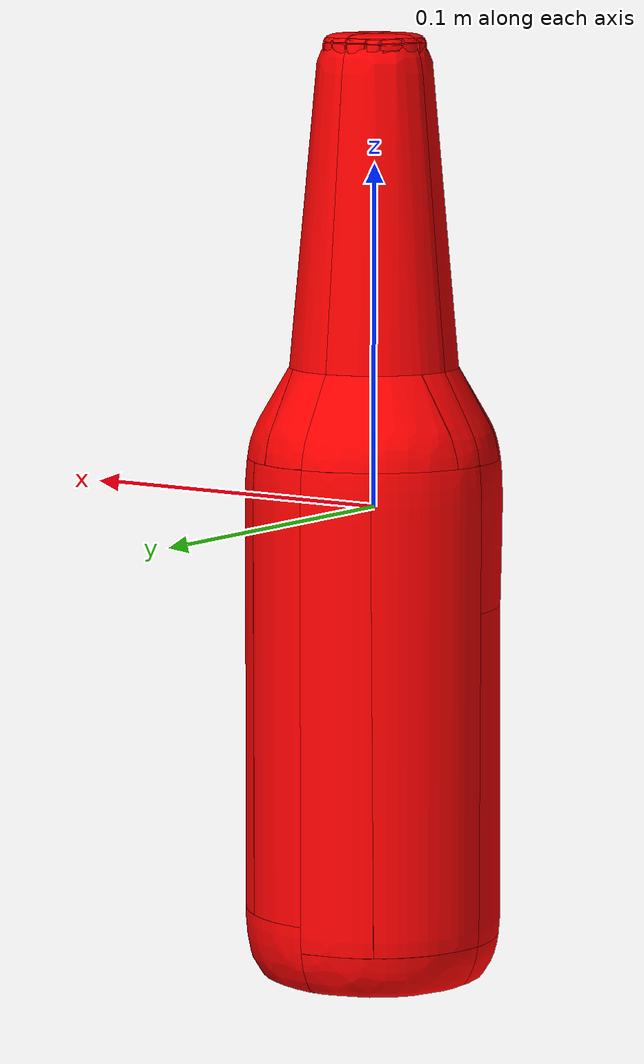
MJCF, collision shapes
<?xml version="1.0" ?>
<mujoco model="beer_bottle">
	<compiler meshdir="beer_bottle/meshes" texturedir="beer_bottle/textures" angle="radian" autolimits="true" balanceinertia="true" boundmass="0.000001" boundinertia="0.000001"/>
	<default>
		<default class="visual">
			<geom contype="0" conaffinity="0"/>
		</default>
		<default class="collision">
			<geom rgba="1.0 0.0 0.0 0.0"/>
		</default>
	</default>
	<asset>
		<mesh name="BeerBottleCap" file="obj/BeerBottleCap.obj" scale="1.0 1.0 1.0"/>
		<mesh name="BeerBottleCap_001" file="stl/BeerBottleCap_001.stl" scale="1.0 1.0 1.0"/>
		<mesh name="BeerBottleCap_002" file="stl/BeerBottleCap_002.stl" scale="1.0 1.0 1.0"/>
		<mesh name="BeerBottleCap_003" file="stl/BeerBottleCap_003.stl" scale="1.0 1.0 1.0"/>
		<mesh name="BeerBottleCap_004" file="stl/BeerBottleCap_004.stl" scale="1.0 1.0 1.0"/>
		<mesh name="BeerBottleCap_005" file="stl/BeerBottleCap_005.stl" scale="1.0 1.0 1.0"/>
		<mesh name="BeerBottleCap_006" file="stl/BeerBottleCap_006.stl" scale="1.0 1.0 1.0"/>
		<mesh name="BeerBottleCap_007" file="stl/BeerBottleCap_007.stl" scale="1.0 1.0 1.0"/>
		<mesh name="BeerBottleCap_008" file="stl/BeerBottleCap_008.stl" scale="1.0 1.0 1.0"/>
		<mesh name="BeerBottleCap_009" file="stl/BeerBottleCap_009.stl" scale="1.0 1.0 1.0"/>
		<mesh name="BeerBottleCap_010" file="stl/BeerBottleCap_010.stl" scale="1.0 1.0 1.0"/>
		<mesh name="BeerBottleCap_011" file="stl/BeerBottleCap_011.stl" scale="1.0 1.0 1.0"/>
		<mesh name="BeerBottleCap_012" file="stl/BeerBottleCap_012.stl" scale="1.0 1.0 1.0"/>
		<mesh name="BeerBottleCap_013" file="stl/BeerBottleCap_013.stl" scale="1.0 1.0 1.0"/>
		<mesh name="BeerBottleCap_014" file="stl/BeerBottleCap_014.stl" scale="1.0 1.0 1.0"/>
		<mesh name="BeerBottleCap_015" file="stl/BeerBottleCap_015.stl" scale="1.0 1.0 1.0"/>
		<mesh name="BeerBottleCap_016" file="stl/BeerBottleCap_016.stl" scale="1.0 1.0 1.0"/>
		<mesh name="BeerBottleCap_017" file="stl/BeerBottleCap_017.stl" scale="1.0 1.0 1.0"/>
		<mesh name="BeerBottleCap_018" file="stl/BeerBottleCap_018.stl" scale="1.0 1.0 1.0"/>
		<mesh name="BeerBottleCap_019" file="stl/BeerBottleCap_019.stl" scale="1.0 1.0 1.0"/>
		<mesh name="BeerBottleCap_020" file="stl/BeerBottleCap_020.stl" scale="1.0 1.0 1.0"/>
		<mesh name="BeerBottleCap_021" file="stl/BeerBottleCap_021.stl" scale="1.0 1.0 1.0"/>
		<mesh name="BeerBottleCap_022" file="stl/BeerBottleCap_022.stl" scale="1.0 1.0 1.0"/>
		<mesh name="BeerBottleCap_023" file="stl/BeerBottleCap_023.stl" scale="1.0 1.0 1.0"/>
		<mesh name="BeerBottleCap_024" file="stl/BeerBottleCap_024.stl" scale="1.0 1.0 1.0"/>
		<mesh name="BeerBottleCap_025" file="stl/BeerBottleCap_025.stl" scale="1.0 1.0 1.0"/>
		<mesh name="BeerBottleCap_026" file="stl/BeerBottleCap_026.stl" scale="1.0 1.0 1.0"/>
		<mesh name="BeerBottleCap_027" file="stl/BeerBottleCap_027.stl" scale="1.0 1.0 1.0"/>
		<mesh name="BeerBottleCap_028" file="stl/BeerBottleCap_028.stl" scale="1.0 1.0 1.0"/>
		<mesh name="BeerBottleCap_029" file="stl/BeerBottleCap_029.stl" scale="1.0 1.0 1.0"/>
		<mesh name="BeerBottleCap_030" file="stl/BeerBottleCap_030.stl" scale="1.0 1.0 1.0"/>
		<mesh name="BeerBottleCap_031" file="stl/BeerBottleCap_031.stl" scale="1.0 1.0 1.0"/>
		<mesh name="BeerBottleCap_032" file="stl/BeerBottleCap_032.stl" scale="1.0 1.0 1.0"/>
		<mesh name="BeerBottleCap_033" file="stl/BeerBottleCap_033.stl" scale="1.0 1.0 1.0"/>
		<mesh name="BeerBottleCap_034" file="stl/BeerBottleCap_034.stl" scale="1.0 1.0 1.0"/>
		<mesh name="BeerBottleCap_035" file="stl/BeerBottleCap_035.stl" scale="1.0 1.0 1.0"/>
		<mesh name="BeerBottleCap_036" file="stl/BeerBottleCap_036.stl" scale="1.0 1.0 1.0"/>
		<mesh name="BeerBottleCap_037" file="stl/BeerBottleCap_037.stl" scale="1.0 1.0 1.0"/>
		<mesh name="BeerBottleCap_038" file="stl/BeerBottleCap_038.stl" scale="1.0 1.0 1.0"/>
		<mesh name="BeerBottleCap_039" file="stl/BeerBottleCap_039.stl" scale="1.0 1.0 1.0"/>
		<mesh name="BeerBottleCap_040" file="stl/BeerBottleCap_040.stl" scale="1.0 1.0 1.0"/>
		<mesh name="BeerBottleBody" file="obj/BeerBottleBody.obj" scale="1.0 1.0 1.0"/>
		<mesh name="BeerBottleBody_001" file="stl/BeerBottleBody_001.stl" scale="1.0 1.0 1.0"/>
		<mesh name="BeerBottleBody_002" file="stl/BeerBottleBody_002.stl" scale="1.0 1.0 1.0"/>
		<mesh name="BeerBottleBody_003" file="stl/BeerBottleBody_003.stl" scale="1.0 1.0 1.0"/>
		<mesh name="BeerBottleBody_004" file="stl/BeerBottleBody_004.stl" scale="1.0 1.0 1.0"/>
		<mesh name="BeerBottleBody_005" file="stl/BeerBottleBody_005.stl" scale="1.0 1.0 1.0"/>
		<mesh name="BeerBottleBody_006" file="stl/BeerBottleBody_006.stl" scale="1.0 1.0 1.0"/>
		<mesh name="BeerBottleBody_007" file="stl/BeerBottleBody_007.stl" scale="1.0 1.0 1.0"/>
		<mesh name="BeerBottleBody_008" file="stl/BeerBottleBody_008.stl" scale="1.0 1.0 1.0"/>
		<mesh name="BeerBottleBody_009" file="stl/BeerBottleBody_009.stl" scale="1.0 1.0 1.0"/>
		<mesh name="BeerBottleBody_010" file="stl/BeerBottleBody_010.stl" scale="1.0 1.0 1.0"/>
		<mesh name="BeerBottleBody_011" file="stl/BeerBottleBody_011.stl" scale="1.0 1.0 1.0"/>
		<mesh name="BeerBottleBody_012" file="stl/BeerBottleBody_012.stl" scale="1.0 1.0 1.0"/>
		<mesh name="BeerBottleBody_013" file="stl/BeerBottleBody_013.stl" scale="1.0 1.0 1.0"/>
		<mesh name="BeerBottleBody_014" file="stl/BeerBottleBody_014.stl" scale="1.0 1.0 1.0"/>
		<mesh name="BeerBottleBody_015" file="stl/BeerBottleBody_015.stl" scale="1.0 1.0 1.0"/>
		<mesh name="BeerBottleBody_016" file="stl/BeerBottleBody_016.stl" scale="1.0 1.0 1.0"/>
		<mesh name="BeerBottleBody_017" file="stl/BeerBottleBody_017.stl" scale="1.0 1.0 1.0"/>
		<mesh name="BeerBottleBody_018" file="stl/BeerBottleBody_018.stl" scale="1.0 1.0 1.0"/>
		<mesh name="BeerBottleBody_019" file="stl/BeerBottleBody_019.stl" scale="1.0 1.0 1.0"/>
		<mesh name="BeerBottleBody_020" file="stl/BeerBottleBody_020.stl" scale="1.0 1.0 1.0"/>
		<mesh name="BeerBottleBody_021" file="stl/BeerBottleBody_021.stl" scale="1.0 1.0 1.0"/>
		<mesh name="BeerBottleBody_022" file="stl/BeerBottleBody_022.stl" scale="1.0 1.0 1.0"/>
		<mesh name="BeerBottleBody_023" file="stl/BeerBottleBody_023.stl" scale="1.0 1.0 1.0"/>
		<mesh name="BeerBottleBody_024" file="stl/BeerBottleBody_024.stl" scale="1.0 1.0 1.0"/>
		<mesh name="BeerBottleBody_025" file="stl/BeerBottleBody_025.stl" scale="1.0 1.0 1.0"/>
		<mesh name="BeerBottleBody_026" file="stl/BeerBottleBody_026.stl" scale="1.0 1.0 1.0"/>
		<mesh name="BeerBottleBody_027" file="stl/BeerBottleBody_027.stl" scale="1.0 1.0 1.0"/>
		<mesh name="BeerBottleBody_028" file="stl/BeerBottleBody_028.stl" scale="1.0 1.0 1.0"/>
		<mesh name="BeerBottleBody_029" file="stl/BeerBottleBody_029.stl" scale="1.0 1.0 1.0"/>
		<material name="M_BeerBottleCap" texture="T_BeerBottleCap"/>
		<material name="M_BeerBottleBody" texture="T_BeerBottleBody"/>
		<texture name="T_BeerBottleCap" type="2d" file="T_BeerBottleCap.png"/>
		<texture name="T_BeerBottleBody" type="2d" file="T_BeerBottleBody.png"/>
	</asset>
	<worldbody>
		<body name="beer_bottle" pos="0.0 0.0 0.0" quat="1.0 0.0 0.0 0.0">
			<body name="beer_bottle_cap" pos="0.0 0.0 0.0" quat="1.0 0.0 0.0 0.0">
				<inertial mass="0.0009343861602246761" pos="8.08560725999996e-05 -9.398388101544697e-06 0.13437895476818085" quat="0.09276032447814941 -0.7008114457130432 0.09276954084634781 0.7011794447898865" diaginertia="1.7288907372403628e-07 1.6953479644143954e-05 1.695373430266045e-05"/>
				<geom name="BeerBottleCap" type="mesh" pos="0.0 0.0 0.0" quat="1.0 0.0 0.0 0.0" mesh="BeerBottleCap" material="M_BeerBottleCap" class="visual"/>
				<geom name="BeerBottleCap_001" type="mesh" pos="0.0 0.0 0.0" quat="1.0 0.0 0.0 0.0" mesh="BeerBottleCap_001" class="collision"/>
				<geom name="BeerBottleCap_002" type="mesh" pos="0.0 0.0 0.0" quat="1.0 0.0 0.0 0.0" mesh="BeerBottleCap_002" class="collision"/>
				<geom name="BeerBottleCap_003" type="mesh" pos="0.0 0.0 0.0" quat="1.0 0.0 0.0 0.0" mesh="BeerBottleCap_003" class="collision"/>
				<geom name="BeerBottleCap_004" type="mesh" pos="0.0 0.0 0.0" quat="1.0 0.0 0.0 0.0" mesh="BeerBottleCap_004" class="collision"/>
				<geom name="BeerBottleCap_005" type="mesh" pos="0.0 0.0 0.0" quat="1.0 0.0 0.0 0.0" mesh="BeerBottleCap_005" class="collision"/>
				<geom name="BeerBottleCap_006" type="mesh" pos="0.0 0.0 0.0" quat="1.0 0.0 0.0 0.0" mesh="BeerBottleCap_006" class="collision"/>
				<geom name="BeerBottleCap_007" type="mesh" pos="0.0 0.0 0.0" quat="1.0 0.0 0.0 0.0" mesh="BeerBottleCap_007" class="collision"/>
				<geom name="BeerBottleCap_008" type="mesh" pos="0.0 0.0 0.0" quat="1.0 0.0 0.0 0.0" mesh="BeerBottleCap_008" class="collision"/>
				<geom name="BeerBottleCap_009" type="mesh" pos="0.0 0.0 0.0" quat="1.0 0.0 0.0 0.0" mesh="BeerBottleCap_009" class="collision"/>
				<geom name="BeerBottleCap_010" type="mesh" pos="0.0 0.0 0.0" quat="1.0 0.0 0.0 0.0" mesh="BeerBottleCap_010" class="collision"/>
				<geom name="BeerBottleCap_011" type="mesh" pos="0.0 0.0 0.0" quat="1.0 0.0 0.0 0.0" mesh="BeerBottleCap_011" class="collision"/>
				<geom name="BeerBottleCap_012" type="mesh" pos="0.0 0.0 0.0" quat="1.0 0.0 0.0 0.0" mesh="BeerBottleCap_012" class="collision"/>
				<geom name="BeerBottleCap_013" type="mesh" pos="0.0 0.0 0.0" quat="1.0 0.0 0.0 0.0" mesh="BeerBottleCap_013" class="collision"/>
				<geom name="BeerBottleCap_014" type="mesh" pos="0.0 0.0 0.0" quat="1.0 0.0 0.0 0.0" mesh="BeerBottleCap_014" class="collision"/>
				<geom name="BeerBottleCap_015" type="mesh" pos="0.0 0.0 0.0" quat="1.0 0.0 0.0 0.0" mesh="BeerBottleCap_015" class="collision"/>
				<geom name="BeerBottleCap_016" type="mesh" pos="0.0 0.0 0.0" quat="1.0 0.0 0.0 0.0" mesh="BeerBottleCap_016" class="collision"/>
				<geom name="BeerBottleCap_017" type="mesh" pos="0.0 0.0 0.0" quat="1.0 0.0 0.0 0.0" mesh="BeerBottleCap_017" class="collision"/>
				<geom name="BeerBottleCap_018" type="mesh" pos="0.0 0.0 0.0" quat="1.0 0.0 0.0 0.0" mesh="BeerBottleCap_018" class="collision"/>
				<geom name="BeerBottleCap_019" type="mesh" pos="0.0 0.0 0.0" quat="1.0 0.0 0.0 0.0" mesh="BeerBottleCap_019" class="collision"/>
				<geom name="BeerBottleCap_020" type="mesh" pos="0.0 0.0 0.0" quat="1.0 0.0 0.0 0.0" mesh="BeerBottleCap_020" class="collision"/>
				<geom name="BeerBottleCap_021" type="mesh" pos="0.0 0.0 0.0" quat="1.0 0.0 0.0 0.0" mesh="BeerBottleCap_021" class="collision"/>
				<geom name="BeerBottleCap_022" type="mesh" pos="0.0 0.0 0.0" quat="1.0 0.0 0.0 0.0" mesh="BeerBottleCap_022" class="collision"/>
				<geom name="BeerBottleCap_023" type="mesh" pos="0.0 0.0 0.0" quat="1.0 0.0 0.0 0.0" mesh="BeerBottleCap_023" class="collision"/>
				<geom name="BeerBottleCap_024" type="mesh" pos="0.0 0.0 0.0" quat="1.0 0.0 0.0 0.0" mesh="BeerBottleCap_024" class="collision"/>
				<geom name="BeerBottleCap_025" type="mesh" pos="0.0 0.0 0.0" quat="1.0 0.0 0.0 0.0" mesh="BeerBottleCap_025" class="collision"/>
				<geom name="BeerBottleCap_026" type="mesh" pos="0.0 0.0 0.0" quat="1.0 0.0 0.0 0.0" mesh="BeerBottleCap_026" class="collision"/>
				<geom name="BeerBottleCap_027" type="mesh" pos="0.0 0.0 0.0" quat="1.0 0.0 0.0 0.0" mesh="BeerBottleCap_027" class="collision"/>
				<geom name="BeerBottleCap_028" type="mesh" pos="0.0 0.0 0.0" quat="1.0 0.0 0.0 0.0" mesh="BeerBottleCap_028" class="collision"/>
				<geom name="BeerBottleCap_029" type="mesh" pos="0.0 0.0 0.0" quat="1.0 0.0 0.0 0.0" mesh="BeerBottleCap_029" class="collision"/>
				<geom name="BeerBottleCap_030" type="mesh" pos="0.0 0.0 0.0" quat="1.0 0.0 0.0 0.0" mesh="BeerBottleCap_030" class="collision"/>
				<geom name="BeerBottleCap_031" type="mesh" pos="0.0 0.0 0.0" quat="1.0 0.0 0.0 0.0" mesh="BeerBottleCap_031" class="collision"/>
				<geom name="BeerBottleCap_032" type="mesh" pos="0.0 0.0 0.0" quat="1.0 0.0 0.0 0.0" mesh="BeerBottleCap_032" class="collision"/>
				<geom name="BeerBottleCap_033" type="mesh" pos="0.0 0.0 0.0" quat="1.0 0.0 0.0 0.0" mesh="BeerBottleCap_033" class="collision"/>
				<geom name="BeerBottleCap_034" type="mesh" pos="0.0 0.0 0.0" quat="1.0 0.0 0.0 0.0" mesh="BeerBottleCap_034" class="collision"/>
				<geom name="BeerBottleCap_035" type="mesh" pos="0.0 0.0 0.0" quat="1.0 0.0 0.0 0.0" mesh="BeerBottleCap_035" class="collision"/>
				<geom name="BeerBottleCap_036" type="mesh" pos="0.0 0.0 0.0" quat="1.0 0.0 0.0 0.0" mesh="BeerBottleCap_036" class="collision"/>
				<geom name="BeerBottleCap_037" type="mesh" pos="0.0 0.0 0.0" quat="1.0 0.0 0.0 0.0" mesh="BeerBottleCap_037" class="collision"/>
				<geom name="BeerBottleCap_038" type="mesh" pos="0.0 0.0 0.0" quat="1.0 0.0 0.0 0.0" mesh="BeerBottleCap_038" class="collision"/>
				<geom name="BeerBottleCap_039" type="mesh" pos="0.0 0.0 0.0" quat="1.0 0.0 0.0 0.0" mesh="BeerBottleCap_039" class="collision"/>
				<geom name="BeerBottleCap_040" type="mesh" pos="0.0 0.0 0.0" quat="1.0 0.0 0.0 0.0" mesh="BeerBottleCap_040" class="collision"/>
			</body>
			<body name="beer_bottle_body" pos="0.0 0.0 0.0" quat="1.0 0.0 0.0 0.0">
				<inertial mass="0.3444143831729889" pos="-6.751268699645152e-08 5.987622131442549e-08 -0.029478183016180992" quat="0.5080596208572388 -0.4918077886104584 0.5080597996711731 0.49180868268013" diaginertia="0.0002992546942550689 0.0022604945115745068 0.00226049916818738"/>
				<geom name="BeerBottleBody" type="mesh" pos="0.0 0.0 0.0" quat="1.0 0.0 0.0 0.0" mesh="BeerBottleBody" material="M_BeerBottleBody" class="visual"/>
				<geom name="BeerBottleBody_001" type="mesh" pos="0.0 0.0 0.0" quat="1.0 0.0 0.0 0.0" mesh="BeerBottleBody_001" class="collision"/>
				<geom name="BeerBottleBody_002" type="mesh" pos="0.0 0.0 0.0" quat="1.0 0.0 0.0 0.0" mesh="BeerBottleBody_002" class="collision"/>
				<geom name="BeerBottleBody_003" type="mesh" pos="0.0 0.0 0.0" quat="1.0 0.0 0.0 0.0" mesh="BeerBottleBody_003" class="collision"/>
				<geom name="BeerBottleBody_004" type="mesh" pos="0.0 0.0 0.0" quat="1.0 0.0 0.0 0.0" mesh="BeerBottleBody_004" class="collision"/>
				<geom name="BeerBottleBody_005" type="mesh" pos="0.0 0.0 0.0" quat="1.0 0.0 0.0 0.0" mesh="BeerBottleBody_005" class="collision"/>
				<geom name="BeerBottleBody_006" type="mesh" pos="0.0 0.0 0.0" quat="1.0 0.0 0.0 0.0" mesh="BeerBottleBody_006" class="collision"/>
				<geom name="BeerBottleBody_007" type="mesh" pos="0.0 0.0 0.0" quat="1.0 0.0 0.0 0.0" mesh="BeerBottleBody_007" class="collision"/>
				<geom name="BeerBottleBody_008" type="mesh" pos="0.0 0.0 0.0" quat="1.0 0.0 0.0 0.0" mesh="BeerBottleBody_008" class="collision"/>
				<geom name="BeerBottleBody_009" type="mesh" pos="0.0 0.0 0.0" quat="1.0 0.0 0.0 0.0" mesh="BeerBottleBody_009" class="collision"/>
				<geom name="BeerBottleBody_010" type="mesh" pos="0.0 0.0 0.0" quat="1.0 0.0 0.0 0.0" mesh="BeerBottleBody_010" class="collision"/>
				<geom name="BeerBottleBody_011" type="mesh" pos="0.0 0.0 0.0" quat="1.0 0.0 0.0 0.0" mesh="BeerBottleBody_011" class="collision"/>
				<geom name="BeerBottleBody_012" type="mesh" pos="0.0 0.0 0.0" quat="1.0 0.0 0.0 0.0" mesh="BeerBottleBody_012" class="collision"/>
				<geom name="BeerBottleBody_013" type="mesh" pos="0.0 0.0 0.0" quat="1.0 0.0 0.0 0.0" mesh="BeerBottleBody_013" class="collision"/>
				<geom name="BeerBottleBody_014" type="mesh" pos="0.0 0.0 0.0" quat="1.0 0.0 0.0 0.0" mesh="BeerBottleBody_014" class="collision"/>
				<geom name="BeerBottleBody_015" type="mesh" pos="0.0 0.0 0.0" quat="1.0 0.0 0.0 0.0" mesh="BeerBottleBody_015" class="collision"/>
				<geom name="BeerBottleBody_016" type="mesh" pos="0.0 0.0 0.0" quat="1.0 0.0 0.0 0.0" mesh="BeerBottleBody_016" class="collision"/>
				<geom name="BeerBottleBody_017" type="mesh" pos="0.0 0.0 0.0" quat="1.0 0.0 0.0 0.0" mesh="BeerBottleBody_017" class="collision"/>
				<geom name="BeerBottleBody_018" type="mesh" pos="0.0 0.0 0.0" quat="1.0 0.0 0.0 0.0" mesh="BeerBottleBody_018" class="collision"/>
				<geom name="BeerBottleBody_019" type="mesh" pos="0.0 0.0 0.0" quat="1.0 0.0 0.0 0.0" mesh="BeerBottleBody_019" class="collision"/>
				<geom name="BeerBottleBody_020" type="mesh" pos="0.0 0.0 0.0" quat="1.0 0.0 0.0 0.0" mesh="BeerBottleBody_020" class="collision"/>
				<geom name="BeerBottleBody_021" type="mesh" pos="0.0 0.0 0.0" quat="1.0 0.0 0.0 0.0" mesh="BeerBottleBody_021" class="collision"/>
				<geom name="BeerBottleBody_022" type="mesh" pos="0.0 0.0 0.0" quat="1.0 0.0 0.0 0.0" mesh="BeerBottleBody_022" class="collision"/>
				<geom name="BeerBottleBody_023" type="mesh" pos="0.0 0.0 0.0" quat="1.0 0.0 0.0 0.0" mesh="BeerBottleBody_023" class="collision"/>
				<geom name="BeerBottleBody_024" type="mesh" pos="0.0 0.0 0.0" quat="1.0 0.0 0.0 0.0" mesh="BeerBottleBody_024" class="collision"/>
				<geom name="BeerBottleBody_025" type="mesh" pos="0.0 0.0 0.0" quat="1.0 0.0 0.0 0.0" mesh="BeerBottleBody_025" class="collision"/>
				<geom name="BeerBottleBody_026" type="mesh" pos="0.0 0.0 0.0" quat="1.0 0.0 0.0 0.0" mesh="BeerBottleBody_026" class="collision"/>
				<geom name="BeerBottleBody_027" type="mesh" pos="0.0 0.0 0.0" quat="1.0 0.0 0.0 0.0" mesh="BeerBottleBody_027" class="collision"/>
				<geom name="BeerBottleBody_028" type="mesh" pos="0.0 0.0 0.0" quat="1.0 0.0 0.0 0.0" mesh="BeerBottleBody_028" class="collision"/>
				<geom name="BeerBottleBody_029" type="mesh" pos="0.0 0.0 0.0" quat="1.0 0.0 0.0 0.0" mesh="BeerBottleBody_029" class="collision"/>
			</body>
		</body>
	</worldbody>
	<equality/>
</mujoco>
